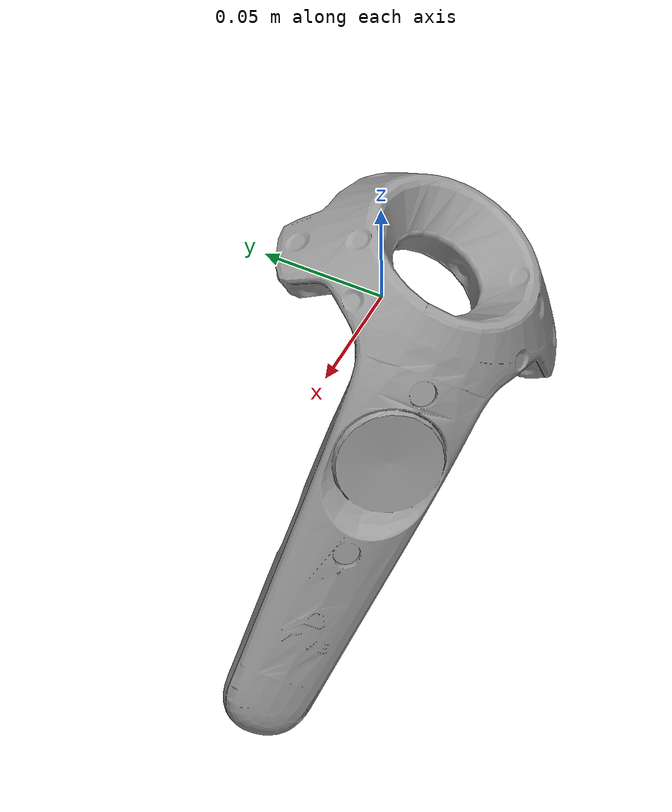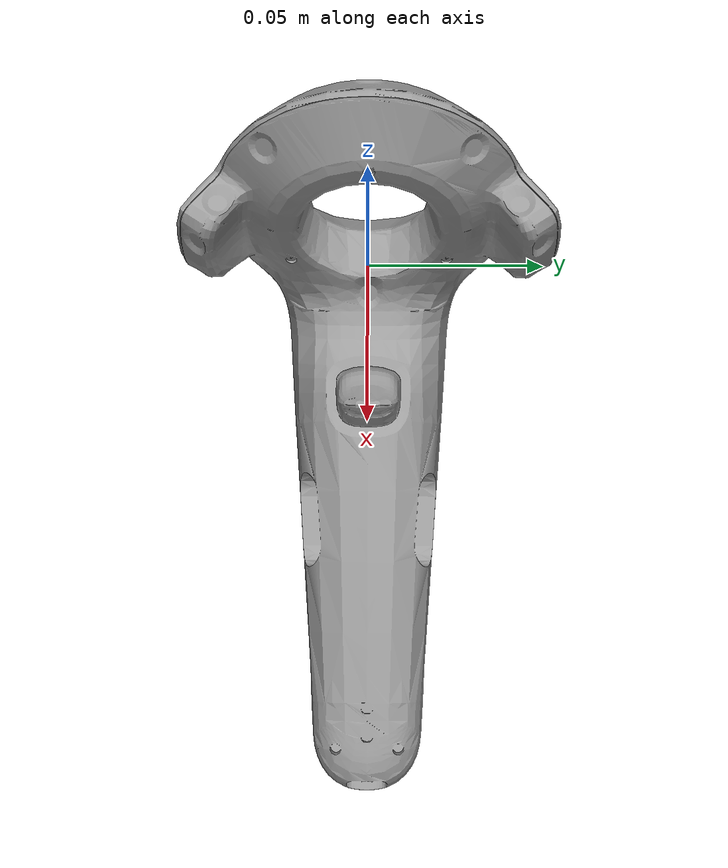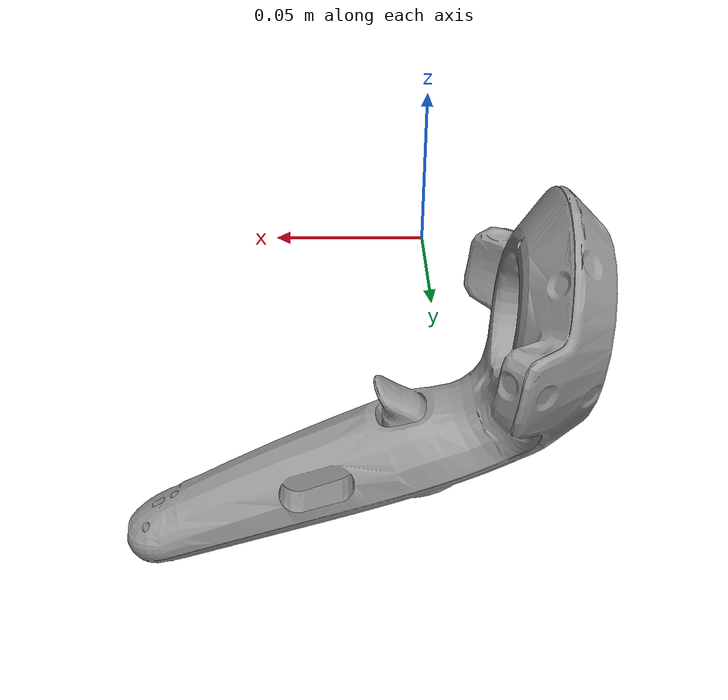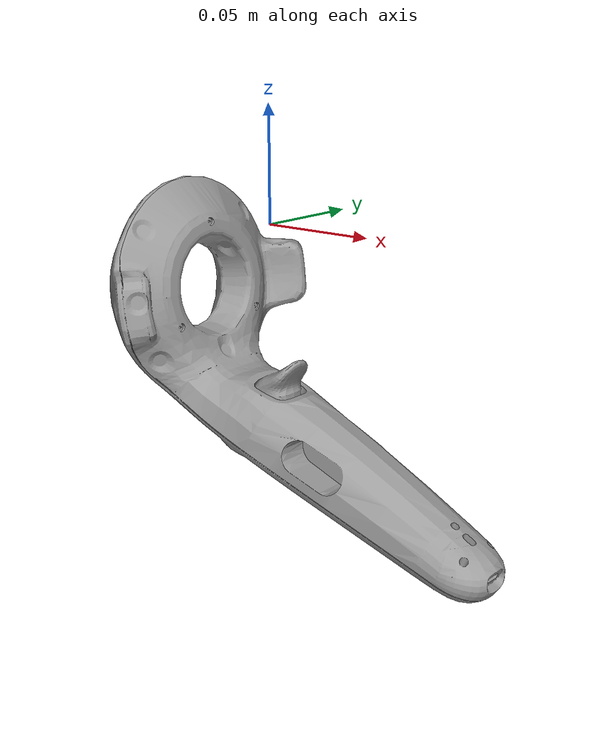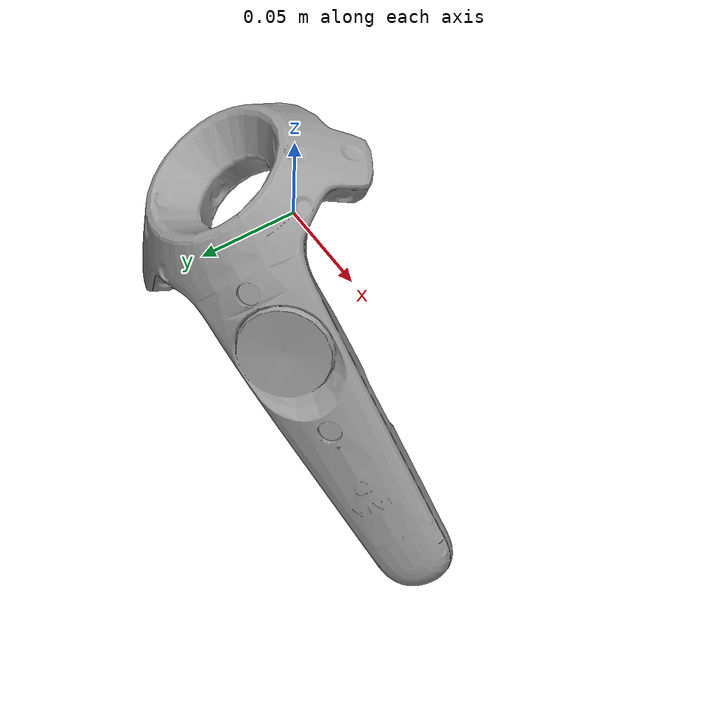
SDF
<?xml version="1.0" ?>
<sdf version="1.6">
  <model name="Vive_Controller">
    <static>true</static>
    <link name="link">
      <collision name="collision">
        <pose>0 0 -0.1 0.4 0 1.57075</pose>
        <geometry>
          <mesh>
            <scale>0.0010 0.0010 0.0010</scale>
            <uri>model://Vive_Controller/meshes/HTC_Vive_controller.stl</uri>
          </mesh>
        </geometry>
      </collision>
      <visual name="visual">
        <pose>0 0 -0.1 0.4 0 1.57075</pose>
        <geometry>
          <mesh>
            <scale>0.0010 0.0010 0.0010</scale>
            <uri>model://Vive_Controller/meshes/HTC_Vive_controller.stl</uri>
          </mesh>
        </geometry>
         <material>
          <script>
            <uri>file://media/materials/scripts/gazebo.material</uri>
            <name>Gazebo/Grey</name>
          </script>
        </material>
      </visual>
    </link>
  </model>
</sdf>
